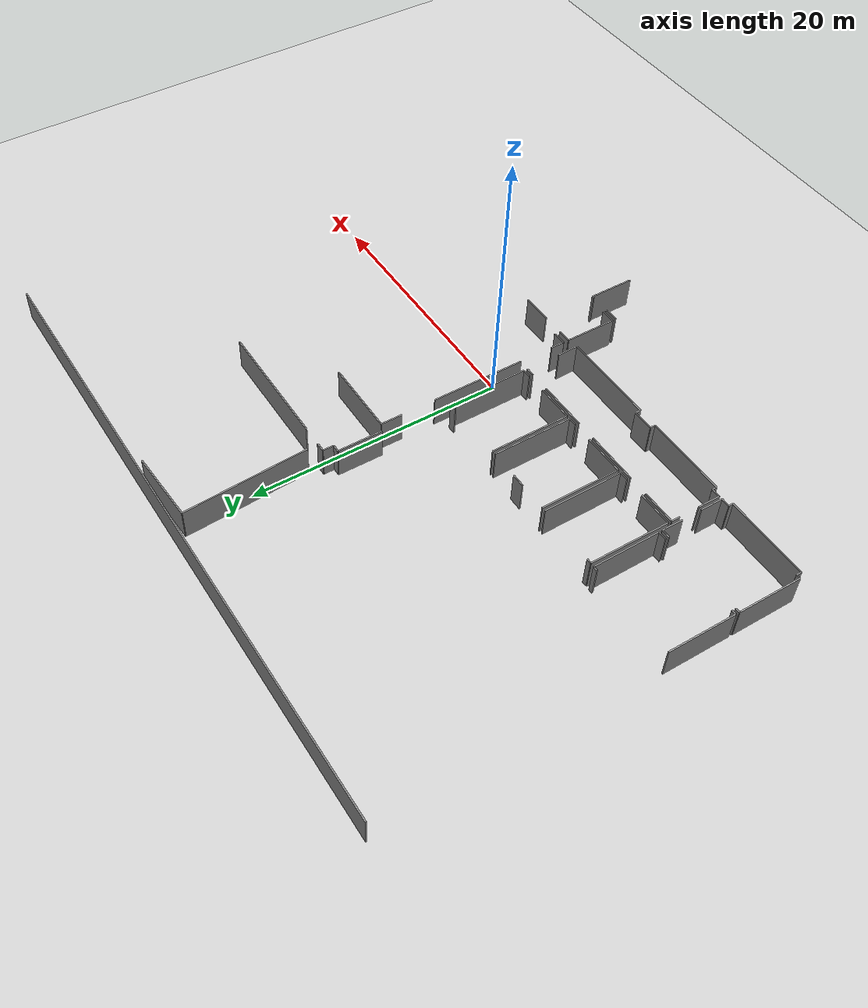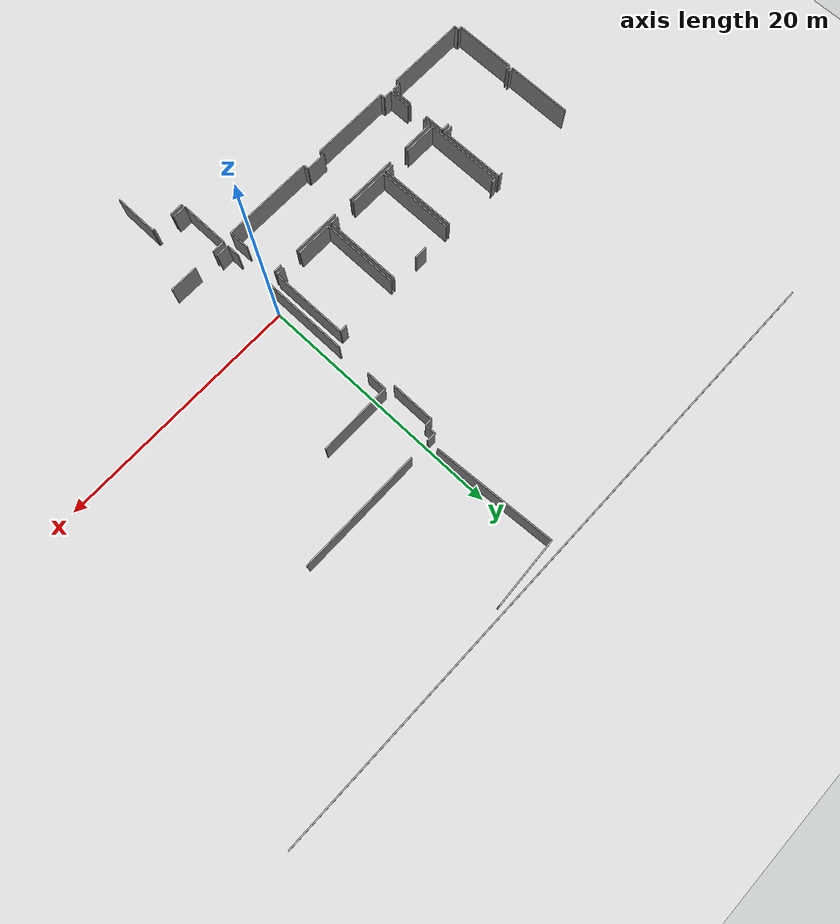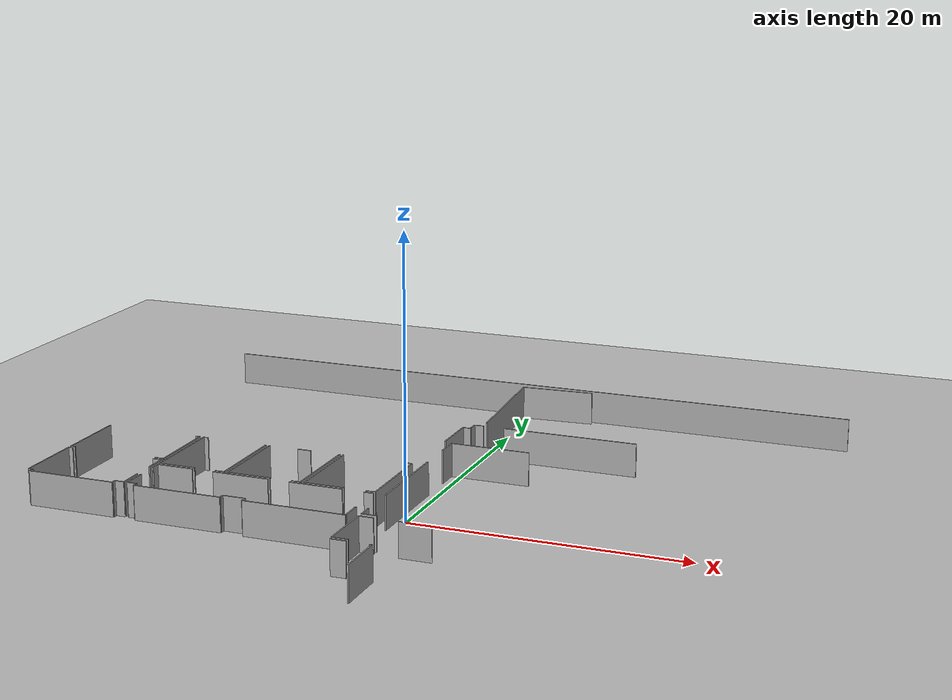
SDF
<sdf version="1.6">
 <world name="default">
  <model name="ground_plane">
   <static>1</static>
   <link name="link">
    <collision name="collision">
     <geometry><plane><normal>0 0 1</normal><size>100 100</size></plane></geometry>
     <surface><friction><ode><mu>100</mu><mu2>50</mu2></ode></friction></surface>
    </collision>
    <visual name="visual">
     <cast_shadows>0</cast_shadows>
     <geometry><plane><normal>0 0 1</normal><size>100 100</size></plane></geometry>
     <material>
      <script><uri>file://media/materials/scripts/gazebo.material</uri><name>Gazebo/Grey</name></script>
     </material>
    </visual>
   </link>
  </model>
  <model name="50025630">
   <static>1</static>
   <link name="Wall_1">
    <collision name="Wall_1_Collision">
     <geometry><box><size>9.8324522599 0.1 2.5</size></box></geometry>
     <pose>4.91622612995 0 1.25 0 0 0</pose>
    </collision>
    <visual name="Wall_1_Visual">
     <pose>4.91622612995 0 1.25 0 0 0</pose>
     <geometry><box><size>9.8324522599 0.1 2.5</size></box></geometry>
     <material>
      <script><uri>file://media/materials/scripts/gazebo.material</uri><name>Gazebo/Grey</name></script>
      <ambient>1 1 1 1</ambient>
     </material>
    </visual>
    <pose>25.6572070842 -10.6291077427 0 0 0 1.63290090576</pose>
   </link>
   <link name="Wall_2">
    <collision name="Wall_2_Collision">
     <geometry><box><size>5.55154715457 0.1 2.5</size></box></geometry>
     <pose>2.77577357729 0 1.25 0 0 0</pose>
    </collision>
    <visual name="Wall_2_Visual">
     <pose>2.77577357729 0 1.25 0 0 0</pose>
     <geometry><box><size>5.55154715457 0.1 2.5</size></box></geometry>
     <material>
      <script><uri>file://media/materials/scripts/gazebo.material</uri><name>Gazebo/Grey</name></script>
      <ambient>1 1 1 1</ambient>
     </material>
    </visual>
    <pose>25.0469592385 -0.815611168615 0 0 0 0.0597673902472</pose>
   </link>
   <link name="Wall_17">
    <collision name="Wall_17_Collision">
     <geometry><box><size>3.53105532871 0.1 2.5</size></box></geometry>
     <pose>1.76552766436 0 1.25 0 0 0</pose>
    </collision>
    <visual name="Wall_17_Visual">
     <pose>1.76552766436 0 1.25 0 0 0</pose>
     <geometry><box><size>3.53105532871 0.1 2.5</size></box></geometry>
     <material>
      <script><uri>file://media/materials/scripts/gazebo.material</uri><name>Gazebo/Grey</name></script>
      <ambient>1 1 1 1</ambient>
     </material>
    </visual>
    <pose>24.4231221067 -15.8639039352 0 0 0 1.57079632679</pose>
   </link>
   <link name="Wall_18">
    <collision name="Wall_18_Collision">
     <geometry><box><size>0.581418238854 0.1 2.5</size></box></geometry>
     <pose>0.290709119427 0 1.25 0 0 0</pose>
    </collision>
    <visual name="Wall_18_Visual">
     <pose>0.290709119427 0 1.25 0 0 0</pose>
     <geometry><box><size>0.581418238854 0.1 2.5</size></box></geometry>
     <material>
      <script><uri>file://media/materials/scripts/gazebo.material</uri><name>Gazebo/Grey</name></script>
      <ambient>1 1 1 1</ambient>
     </material>
    </visual>
    <pose>24.4231221067 -12.3328486065 0 0 0 0.0</pose>
   </link>
   <link name="Wall_19">
    <collision name="Wall_19_Collision">
     <geometry><box><size>0.856506029452 0.1 2.5</size></box></geometry>
     <pose>0.428253014726 0 1.25 0 0 0</pose>
    </collision>
    <visual name="Wall_19_Visual">
     <pose>0.428253014726 0 1.25 0 0 0</pose>
     <geometry><box><size>0.856506029452 0.1 2.5</size></box></geometry>
     <material>
      <script><uri>file://media/materials/scripts/gazebo.material</uri><name>Gazebo/Grey</name></script>
      <ambient>1 1 1 1</ambient>
     </material>
    </visual>
    <pose>25.0045403456 -12.3328486065 0 0 0 1.57079632679</pose>
   </link>
   <link name="Wall_20">
    <collision name="Wall_20_Collision">
     <geometry><box><size>0.713882027217 0.1 2.5</size></box></geometry>
     <pose>0.356941013608 0 1.25 0 0 0</pose>
    </collision>
    <visual name="Wall_20_Visual">
     <pose>0.356941013608 0 1.25 0 0 0</pose>
     <geometry><box><size>0.713882027217 0.1 2.5</size></box></geometry>
     <material>
      <script><uri>file://media/materials/scripts/gazebo.material</uri><name>Gazebo/Grey</name></script>
      <ambient>1 1 1 1</ambient>
     </material>
    </visual>
    <pose>25.0045403456 -11.476342577 0 0 0 0.0</pose>
   </link>
   <link name="Wall_21">
    <collision name="Wall_21_Collision">
     <geometry><box><size>10.0843932765 0.1 2.5</size></box></geometry>
     <pose>5.04219663824 0 1.25 0 0 0</pose>
    </collision>
    <visual name="Wall_21_Visual">
     <pose>5.04219663824 0 1.25 0 0 0</pose>
     <geometry><box><size>10.0843932765 0.1 2.5</size></box></geometry>
     <material>
      <script><uri>file://media/materials/scripts/gazebo.material</uri><name>Gazebo/Grey</name></script>
      <ambient>1 1 1 1</ambient>
     </material>
    </visual>
    <pose>27.3217041219 -11.476342577 0 0 0 0.0</pose>
   </link>
   <link name="Wall_24">
    <collision name="Wall_24_Collision">
     <geometry><box><size>1.0602183176 0.1 2.5</size></box></geometry>
     <pose>0.530109158798 0 1.25 0 0 0</pose>
    </collision>
    <visual name="Wall_24_Visual">
     <pose>0.530109158798 0 1.25 0 0 0</pose>
     <geometry><box><size>1.0602183176 0.1 2.5</size></box></geometry>
     <material>
      <script><uri>file://media/materials/scripts/gazebo.material</uri><name>Gazebo/Grey</name></script>
      <ambient>1 1 1 1</ambient>
     </material>
    </visual>
    <pose>26.0802529893 -31.8441423192 0 0 0 3.14159265359</pose>
   </link>
   <link name="Wall_25">
    <collision name="Wall_25_Collision">
     <geometry><box><size>1.07317259028 0.1 2.5</size></box></geometry>
     <pose>0.536586295142 0 1.25 0 0 0</pose>
    </collision>
    <visual name="Wall_25_Visual">
     <pose>0.536586295142 0 1.25 0 0 0</pose>
     <geometry><box><size>1.07317259028 0.1 2.5</size></box></geometry>
     <material>
      <script><uri>file://media/materials/scripts/gazebo.material</uri><name>Gazebo/Grey</name></script>
      <ambient>1 1 1 1</ambient>
     </material>
    </visual>
    <pose>25.0200346717 -31.8441423192 0 0 0 1.57079632679</pose>
   </link>
   <link name="Wall_26">
    <collision name="Wall_26_Collision">
     <geometry><box><size>7.44070562685 0.1 2.5</size></box></geometry>
     <pose>3.72035281343 0 1.25 0 0 0</pose>
    </collision>
    <visual name="Wall_26_Visual">
     <pose>3.72035281343 0 1.25 0 0 0</pose>
     <geometry><box><size>7.44070562685 0.1 2.5</size></box></geometry>
     <material>
      <script><uri>file://media/materials/scripts/gazebo.material</uri><name>Gazebo/Grey</name></script>
      <ambient>1 1 1 1</ambient>
     </material>
    </visual>
    <pose>25.0200346717 -28.034062117 0 0 0 1.57079632679</pose>
   </link>
   <link name="Wall_27">
    <collision name="Wall_27_Collision">
     <geometry><box><size>1.68469046273 0.1 2.5</size></box></geometry>
     <pose>0.842345231367 0 1.25 0 0 0</pose>
    </collision>
    <visual name="Wall_27_Visual">
     <pose>0.842345231367 0 1.25 0 0 0</pose>
     <geometry><box><size>1.68469046273 0.1 2.5</size></box></geometry>
     <material>
      <script><uri>file://media/materials/scripts/gazebo.material</uri><name>Gazebo/Grey</name></script>
      <ambient>1 1 1 1</ambient>
     </material>
    </visual>
    <pose>25.0200346717 -17.8413355601 0 0 0 1.57079632679</pose>
   </link>
   <link name="Wall_28">
    <collision name="Wall_28_Collision">
     <geometry><box><size>5.89622611556 0.1 2.5</size></box></geometry>
     <pose>2.94811305778 0 1.25 0 0 0</pose>
    </collision>
    <visual name="Wall_28_Visual">
     <pose>2.94811305778 0 1.25 0 0 0</pose>
     <geometry><box><size>5.89622611556 0.1 2.5</size></box></geometry>
     <material>
      <script><uri>file://media/materials/scripts/gazebo.material</uri><name>Gazebo/Grey</name></script>
      <ambient>1 1 1 1</ambient>
     </material>
    </visual>
    <pose>25.0200346717 -16.1566450974 0 0 0 0.0</pose>
   </link>
   <link name="Wall_70">
    <collision name="Wall_70_Collision">
     <geometry><box><size>1.14721514888 0.1 2.5</size></box></geometry>
     <pose>0.573607574439 0 1.25 0 0 0</pose>
    </collision>
    <visual name="Wall_70_Visual">
     <pose>0.573607574439 0 1.25 0 0 0</pose>
     <geometry><box><size>1.14721514888 0.1 2.5</size></box></geometry>
     <material>
      <script><uri>file://media/materials/scripts/gazebo.material</uri><name>Gazebo/Grey</name></script>
      <ambient>1 1 1 1</ambient>
     </material>
    </visual>
    <pose>26.1527715158 -36.375343701 0 0 0 3.14159265359</pose>
   </link>
   <link name="Wall_71">
    <collision name="Wall_71_Collision">
     <geometry><box><size>4.0803418912 0.1 2.5</size></box></geometry>
     <pose>2.0401709456 0 1.25 0 0 0</pose>
    </collision>
    <visual name="Wall_71_Visual">
     <pose>2.0401709456 0 1.25 0 0 0</pose>
     <geometry><box><size>4.0803418912 0.1 2.5</size></box></geometry>
     <material>
      <script><uri>file://media/materials/scripts/gazebo.material</uri><name>Gazebo/Grey</name></script>
      <ambient>1 1 1 1</ambient>
     </material>
    </visual>
    <pose>25.005556367 -36.375343701 0 0 0 1.57079632679</pose>
   </link>
   <link name="Wall_72">
    <collision name="Wall_72_Collision">
     <geometry><box><size>1.06644144859 0.1 2.5</size></box></geometry>
     <pose>0.533220724296 0 1.25 0 0 0</pose>
    </collision>
    <visual name="Wall_72_Visual">
     <pose>0.533220724296 0 1.25 0 0 0</pose>
     <geometry><box><size>1.06644144859 0.1 2.5</size></box></geometry>
     <material>
      <script><uri>file://media/materials/scripts/gazebo.material</uri><name>Gazebo/Grey</name></script>
      <ambient>1 1 1 1</ambient>
     </material>
    </visual>
    <pose>25.005556367 -32.2950018098 0 0 0 0.0</pose>
   </link>
   <link name="Wall_73">
    <collision name="Wall_73_Collision">
     <geometry><box><size>2.31919581907 0.1 2.5</size></box></geometry>
     <pose>1.15959790954 0 1.25 0 0 0</pose>
    </collision>
    <visual name="Wall_73_Visual">
     <pose>1.15959790954 0 1.25 0 0 0</pose>
     <geometry><box><size>2.31919581907 0.1 2.5</size></box></geometry>
     <material>
      <script><uri>file://media/materials/scripts/gazebo.material</uri><name>Gazebo/Grey</name></script>
      <ambient>1 1 1 1</ambient>
     </material>
    </visual>
    <pose>27.7997421846 -32.2950018098 0 0 0 0.0</pose>
   </link>
   <link name="Wall_90">
    <collision name="Wall_90_Collision">
     <geometry><box><size>1.11190840567 0.1 2.5</size></box></geometry>
     <pose>0.555954202836 0 1.25 0 0 0</pose>
    </collision>
    <visual name="Wall_90_Visual">
     <pose>0.555954202836 0 1.25 0 0 0</pose>
     <geometry><box><size>1.11190840567 0.1 2.5</size></box></geometry>
     <material>
      <script><uri>file://media/materials/scripts/gazebo.material</uri><name>Gazebo/Grey</name></script>
      <ambient>1 1 1 1</ambient>
     </material>
    </visual>
    <pose>25.0234637439 -36.6678308578 0 0 0 0.0</pose>
   </link>
   <link name="Wall_91">
    <collision name="Wall_91_Collision">
     <geometry><box><size>0.181232814951 0.1 2.5</size></box></geometry>
     <pose>0.0906164074754 0 1.25 0 0 0</pose>
    </collision>
    <visual name="Wall_91_Visual">
     <pose>0.0906164074754 0 1.25 0 0 0</pose>
     <geometry><box><size>0.181232814951 0.1 2.5</size></box></geometry>
     <material>
      <script><uri>file://media/materials/scripts/gazebo.material</uri><name>Gazebo/Grey</name></script>
      <ambient>1 1 1 1</ambient>
     </material>
    </visual>
    <pose>27.7169364415 -36.6678308578 0 0 0 0.0</pose>
   </link>
   <link name="Wall_92">
    <collision name="Wall_92_Collision">
     <geometry><box><size>3.60839995682 0.1 2.5</size></box></geometry>
     <pose>1.80419997841 0 1.25 0 0 0</pose>
    </collision>
    <visual name="Wall_92_Visual">
     <pose>1.80419997841 0 1.25 0 0 0</pose>
     <geometry><box><size>3.60839995682 0.1 2.5</size></box></geometry>
     <material>
      <script><uri>file://media/materials/scripts/gazebo.material</uri><name>Gazebo/Grey</name></script>
      <ambient>1 1 1 1</ambient>
     </material>
    </visual>
    <pose>27.8981692565 -36.6678308578 0 0 0 -1.57079632679</pose>
   </link>
   <link name="Wall_144">
    <collision name="Wall_144_Collision">
     <geometry><box><size>7.48045746363 0.1 2.5</size></box></geometry>
     <pose>3.74022873181 0 1.25 0 0 0</pose>
    </collision>
    <visual name="Wall_144_Visual">
     <pose>3.74022873181 0 1.25 0 0 0</pose>
     <geometry><box><size>7.48045746363 0.1 2.5</size></box></geometry>
     <material>
      <script><uri>file://media/materials/scripts/gazebo.material</uri><name>Gazebo/Grey</name></script>
      <ambient>1 1 1 1</ambient>
     </material>
    </visual>
    <pose>24.1679737358 -32.4316566864 0 0 0 3.14159265359</pose>
   </link>
   <link name="Wall_145">
    <collision name="Wall_145_Collision">
     <geometry><box><size>0.431809089581 0.1 2.5</size></box></geometry>
     <pose>0.215904544791 0 1.25 0 0 0</pose>
    </collision>
    <visual name="Wall_145_Visual">
     <pose>0.215904544791 0 1.25 0 0 0</pose>
     <geometry><box><size>0.431809089581 0.1 2.5</size></box></geometry>
     <material>
      <script><uri>file://media/materials/scripts/gazebo.material</uri><name>Gazebo/Grey</name></script>
      <ambient>1 1 1 1</ambient>
     </material>
    </visual>
    <pose>16.6875162722 -32.4316566864 0 0 0 1.57079632679</pose>
   </link>
   <link name="Wall_146">
    <collision name="Wall_146_Collision">
     <geometry><box><size>1.65103475428 0.1 2.5</size></box></geometry>
     <pose>0.825517377141 0 1.25 0 0 0</pose>
    </collision>
    <visual name="Wall_146_Visual">
     <pose>0.825517377141 0 1.25 0 0 0</pose>
     <geometry><box><size>1.65103475428 0.1 2.5</size></box></geometry>
     <material>
      <script><uri>file://media/materials/scripts/gazebo.material</uri><name>Gazebo/Grey</name></script>
      <ambient>1 1 1 1</ambient>
     </material>
    </visual>
    <pose>16.6875162722 -31.9998475968 0 0 0 3.14159265359</pose>
   </link>
   <link name="Wall_147">
    <collision name="Wall_147_Collision">
     <geometry><box><size>0.4064085549 0.1 2.5</size></box></geometry>
     <pose>0.20320427745 0 1.25 0 0 0</pose>
    </collision>
    <visual name="Wall_147_Visual">
     <pose>0.20320427745 0 1.25 0 0 0</pose>
     <geometry><box><size>0.4064085549 0.1 2.5</size></box></geometry>
     <material>
      <script><uri>file://media/materials/scripts/gazebo.material</uri><name>Gazebo/Grey</name></script>
      <ambient>1 1 1 1</ambient>
     </material>
    </visual>
    <pose>15.0364815179 -31.9998475968 0 0 0 -1.57079632679</pose>
   </link>
   <link name="Wall_148">
    <collision name="Wall_148_Collision">
     <geometry><box><size>6.52171428209 0.1 2.5</size></box></geometry>
     <pose>3.26085714104 0 1.25 0 0 0</pose>
    </collision>
    <visual name="Wall_148_Visual">
     <pose>3.26085714104 0 1.25 0 0 0</pose>
     <geometry><box><size>6.52171428209 0.1 2.5</size></box></geometry>
     <material>
      <script><uri>file://media/materials/scripts/gazebo.material</uri><name>Gazebo/Grey</name></script>
      <ambient>1 1 1 1</ambient>
     </material>
    </visual>
    <pose>15.0364815179 -32.4062561517 0 0 0 3.14159265359</pose>
   </link>
   <link name="Wall_149">
    <collision name="Wall_149_Collision">
     <geometry><box><size>0.361576611188 0.1 2.5</size></box></geometry>
     <pose>0.180788305594 0 1.25 0 0 0</pose>
    </collision>
    <visual name="Wall_149_Visual">
     <pose>0.180788305594 0 1.25 0 0 0</pose>
     <geometry><box><size>0.361576611188 0.1 2.5</size></box></geometry>
     <material>
      <script><uri>file://media/materials/scripts/gazebo.material</uri><name>Gazebo/Grey</name></script>
      <ambient>1 1 1 1</ambient>
     </material>
    </visual>
    <pose>8.51476723585 -32.4062561517 0 0 0 1.57079632679</pose>
   </link>
   <link name="Wall_150">
    <collision name="Wall_150_Collision">
     <geometry><box><size>0.704356826711 0.1 2.5</size></box></geometry>
     <pose>0.352178413356 0 1.25 0 0 0</pose>
    </collision>
    <visual name="Wall_150_Visual">
     <pose>0.352178413356 0 1.25 0 0 0</pose>
     <geometry><box><size>0.704356826711 0.1 2.5</size></box></geometry>
     <material>
      <script><uri>file://media/materials/scripts/gazebo.material</uri><name>Gazebo/Grey</name></script>
      <ambient>1 1 1 1</ambient>
     </material>
    </visual>
    <pose>8.51476723585 -32.0446795405 0 0 0 3.14159265359</pose>
   </link>
   <link name="Wall_151">
    <collision name="Wall_151_Collision">
     <geometry><box><size>1.78629260146 0.1 2.5</size></box></geometry>
     <pose>0.89314630073 0 1.25 0 0 0</pose>
    </collision>
    <visual name="Wall_151_Visual">
     <pose>0.89314630073 0 1.25 0 0 0</pose>
     <geometry><box><size>1.78629260146 0.1 2.5</size></box></geometry>
     <material>
      <script><uri>file://media/materials/scripts/gazebo.material</uri><name>Gazebo/Grey</name></script>
      <ambient>1 1 1 1</ambient>
     </material>
    </visual>
    <pose>7.81041040914 -32.0446795405 0 0 0 1.57079632679</pose>
   </link>
   <link name="Wall_152">
    <collision name="Wall_152_Collision">
     <geometry><box><size>0.668034062117 0.1 2.5</size></box></geometry>
     <pose>0.334017031059 0 1.25 0 0 0</pose>
    </collision>
    <visual name="Wall_152_Visual">
     <pose>0.334017031059 0 1.25 0 0 0</pose>
     <geometry><box><size>0.668034062117 0.1 2.5</size></box></geometry>
     <material>
      <script><uri>file://media/materials/scripts/gazebo.material</uri><name>Gazebo/Grey</name></script>
      <ambient>1 1 1 1</ambient>
     </material>
    </visual>
    <pose>7.81041040914 -28.6535811579 0 0 0 1.57079632679</pose>
   </link>
   <link name="Wall_153">
    <collision name="Wall_153_Collision">
     <geometry><box><size>2.7230643205 0.1 2.5</size></box></geometry>
     <pose>1.36153216025 0 1.25 0 0 0</pose>
    </collision>
    <visual name="Wall_153_Visual">
     <pose>1.36153216025 0 1.25 0 0 0</pose>
     <geometry><box><size>2.7230643205 0.1 2.5</size></box></geometry>
     <material>
      <script><uri>file://media/materials/scripts/gazebo.material</uri><name>Gazebo/Grey</name></script>
      <ambient>1 1 1 1</ambient>
     </material>
    </visual>
    <pose>7.81041040914 -27.9855470958 0 0 0 0.0</pose>
   </link>
   <link name="Wall_154">
    <collision name="Wall_154_Collision">
     <geometry><box><size>4.20035941757 0.1 2.5</size></box></geometry>
     <pose>2.10017970878 0 1.25 0 0 0</pose>
    </collision>
    <visual name="Wall_154_Visual">
     <pose>2.10017970878 0 1.25 0 0 0</pose>
     <geometry><box><size>4.20035941757 0.1 2.5</size></box></geometry>
     <material>
      <script><uri>file://media/materials/scripts/gazebo.material</uri><name>Gazebo/Grey</name></script>
      <ambient>1 1 1 1</ambient>
     </material>
    </visual>
    <pose>12.1394235349 -27.9855470958 0 0 0 0.0</pose>
   </link>
   <link name="Wall_155">
    <collision name="Wall_155_Collision">
     <geometry><box><size>3.94267099322 0.1 2.5</size></box></geometry>
     <pose>1.97133549661 0 1.25 0 0 0</pose>
    </collision>
    <visual name="Wall_155_Visual">
     <pose>1.97133549661 0 1.25 0 0 0</pose>
     <geometry><box><size>3.94267099322 0.1 2.5</size></box></geometry>
     <material>
      <script><uri>file://media/materials/scripts/gazebo.material</uri><name>Gazebo/Grey</name></script>
      <ambient>1 1 1 1</ambient>
     </material>
    </visual>
    <pose>17.9376035866 -27.9855470958 0 0 0 0.0</pose>
   </link>
   <link name="Wall_156">
    <collision name="Wall_156_Collision">
     <geometry><box><size>0.662572947161 0.1 2.5</size></box></geometry>
     <pose>0.33128647358 0 1.25 0 0 0</pose>
    </collision>
    <visual name="Wall_156_Visual">
     <pose>0.33128647358 0 1.25 0 0 0</pose>
     <geometry><box><size>0.662572947161 0.1 2.5</size></box></geometry>
     <material>
      <script><uri>file://media/materials/scripts/gazebo.material</uri><name>Gazebo/Grey</name></script>
      <ambient>1 1 1 1</ambient>
     </material>
    </visual>
    <pose>23.4719990856 -27.9855470958 0 0 0 0.0</pose>
   </link>
   <link name="Wall_157">
    <collision name="Wall_157_Collision">
     <geometry><box><size>1.66407027975 0.1 2.5</size></box></geometry>
     <pose>0.832035139874 0 1.25 0 0 0</pose>
    </collision>
    <visual name="Wall_157_Visual">
     <pose>0.832035139874 0 1.25 0 0 0</pose>
     <geometry><box><size>1.66407027975 0.1 2.5</size></box></geometry>
     <material>
      <script><uri>file://media/materials/scripts/gazebo.material</uri><name>Gazebo/Grey</name></script>
      <ambient>1 1 1 1</ambient>
     </material>
    </visual>
    <pose>24.1345720327 -30.7679216648 0 0 0 -1.55072268758</pose>
   </link>
   <link name="Wall_158">
    <collision name="Wall_158_Collision">
     <geometry><box><size>0.694069610165 0.1 2.5</size></box></geometry>
     <pose>0.347034805083 0 1.25 0 0 0</pose>
    </collision>
    <visual name="Wall_158_Visual">
     <pose>0.347034805083 0 1.25 0 0 0</pose>
     <geometry><box><size>0.694069610165 0.1 2.5</size></box></geometry>
     <material>
      <script><uri>file://media/materials/scripts/gazebo.material</uri><name>Gazebo/Grey</name></script>
      <ambient>1 1 1 1</ambient>
     </material>
    </visual>
    <pose>7.5464988538 -32.0486166234 0 0 0 3.14159265359</pose>
   </link>
   <link name="Wall_159">
    <collision name="Wall_159_Collision">
     <geometry><box><size>0.358147539006 0.1 2.5</size></box></geometry>
     <pose>0.179073769503 0 1.25 0 0 0</pose>
    </collision>
    <visual name="Wall_159_Visual">
     <pose>0.179073769503 0 1.25 0 0 0</pose>
     <geometry><box><size>0.358147539006 0.1 2.5</size></box></geometry>
     <material>
      <script><uri>file://media/materials/scripts/gazebo.material</uri><name>Gazebo/Grey</name></script>
      <ambient>1 1 1 1</ambient>
     </material>
    </visual>
    <pose>6.85242924364 -32.0486166234 0 0 0 -1.57079632679</pose>
   </link>
   <link name="Wall_160">
    <collision name="Wall_160_Collision">
     <geometry><box><size>6.54482876865 0.1 2.5</size></box></geometry>
     <pose>3.27241438432 0 1.25 0 0 0</pose>
    </collision>
    <visual name="Wall_160_Visual">
     <pose>3.27241438432 0 1.25 0 0 0</pose>
     <geometry><box><size>6.54482876865 0.1 2.5</size></box></geometry>
     <material>
      <script><uri>file://media/materials/scripts/gazebo.material</uri><name>Gazebo/Grey</name></script>
      <ambient>1 1 1 1</ambient>
     </material>
    </visual>
    <pose>6.85242924364 -32.4067641624 0 0 0 3.14159265359</pose>
   </link>
   <link name="Wall_161">
    <collision name="Wall_161_Collision">
     <geometry><box><size>0.384310089727 0.1 2.5</size></box></geometry>
     <pose>0.192155044864 0 1.25 0 0 0</pose>
    </collision>
    <visual name="Wall_161_Visual">
     <pose>0.192155044864 0 1.25 0 0 0</pose>
     <geometry><box><size>0.384310089727 0.1 2.5</size></box></geometry>
     <material>
      <script><uri>file://media/materials/scripts/gazebo.material</uri><name>Gazebo/Grey</name></script>
      <ambient>1 1 1 1</ambient>
     </material>
    </visual>
    <pose>0.30760047499 -32.4067641624 0 0 0 1.57079632679</pose>
   </link>
   <link name="Wall_162">
    <collision name="Wall_162_Collision">
     <geometry><box><size>0.30760047499 0.1 2.5</size></box></geometry>
     <pose>0.153800237495 0 1.25 0 0 0</pose>
    </collision>
    <visual name="Wall_162_Visual">
     <pose>0.153800237495 0 1.25 0 0 0</pose>
     <geometry><box><size>0.30760047499 0.1 2.5</size></box></geometry>
     <material>
      <script><uri>file://media/materials/scripts/gazebo.material</uri><name>Gazebo/Grey</name></script>
      <ambient>1 1 1 1</ambient>
     </material>
    </visual>
    <pose>0.30760047499 -32.0224540727 0 0 0 3.14159265359</pose>
   </link>
   <link name="Wall_163">
    <collision name="Wall_163_Collision">
     <geometry><box><size>5.01851063965 0.1 2.5</size></box></geometry>
     <pose>2.50925531982 0 1.25 0 0 0</pose>
    </collision>
    <visual name="Wall_163_Visual">
     <pose>2.50925531982 0 1.25 0 0 0</pose>
     <geometry><box><size>5.01851063965 0.1 2.5</size></box></geometry>
     <material>
      <script><uri>file://media/materials/scripts/gazebo.material</uri><name>Gazebo/Grey</name></script>
      <ambient>1 1 1 1</ambient>
     </material>
    </visual>
    <pose>0.0 -32.0224540727 0 0 0 1.57079632679</pose>
   </link>
   <link name="Wall_164">
    <collision name="Wall_164_Collision">
     <geometry><box><size>0.357004514945 0.1 2.5</size></box></geometry>
     <pose>0.178502257473 0 1.25 0 0 0</pose>
    </collision>
    <visual name="Wall_164_Visual">
     <pose>0.178502257473 0 1.25 0 0 0</pose>
     <geometry><box><size>0.357004514945 0.1 2.5</size></box></geometry>
     <material>
      <script><uri>file://media/materials/scripts/gazebo.material</uri><name>Gazebo/Grey</name></script>
      <ambient>1 1 1 1</ambient>
     </material>
    </visual>
    <pose>0.0 -27.003943433 0 0 0 0.0</pose>
   </link>
   <link name="Wall_165">
    <collision name="Wall_165_Collision">
     <geometry><box><size>0.675654222521 0.1 2.5</size></box></geometry>
     <pose>0.337827111261 0 1.25 0 0 0</pose>
    </collision>
    <visual name="Wall_165_Visual">
     <pose>0.337827111261 0 1.25 0 0 0</pose>
     <geometry><box><size>0.675654222521 0.1 2.5</size></box></geometry>
     <material>
      <script><uri>file://media/materials/scripts/gazebo.material</uri><name>Gazebo/Grey</name></script>
      <ambient>1 1 1 1</ambient>
     </material>
    </visual>
    <pose>6.85763635325 -27.003943433 0 0 0 0.0</pose>
   </link>
   <link name="Wall_166">
    <collision name="Wall_166_Collision">
     <geometry><box><size>1.66271900023 0.1 2.5</size></box></geometry>
     <pose>0.831359500117 0 1.25 0 0 0</pose>
    </collision>
    <visual name="Wall_166_Visual">
     <pose>0.831359500117 0 1.25 0 0 0</pose>
     <geometry><box><size>1.66271900023 0.1 2.5</size></box></geometry>
     <material>
      <script><uri>file://media/materials/scripts/gazebo.material</uri><name>Gazebo/Grey</name></script>
      <ambient>1 1 1 1</ambient>
     </material>
    </visual>
    <pose>7.53329057577 -27.003943433 0 0 0 -1.57079632679</pose>
   </link>
   <link name="Wall_167">
    <collision name="Wall_167_Collision">
     <geometry><box><size>1.78951641358 0.1 2.5</size></box></geometry>
     <pose>0.894758206791 0 1.25 0 0 0</pose>
    </collision>
    <visual name="Wall_167_Visual">
     <pose>0.894758206791 0 1.25 0 0 0</pose>
     <geometry><box><size>1.78951641358 0.1 2.5</size></box></geometry>
     <material>
      <script><uri>file://media/materials/scripts/gazebo.material</uri><name>Gazebo/Grey</name></script>
      <ambient>1 1 1 1</ambient>
     </material>
    </visual>
    <pose>7.53329057577 -30.2591489551 0 0 0 -1.56341533947</pose>
   </link>
   <link name="Wall_168">
    <collision name="Wall_168_Collision">
     <geometry><box><size>0.686576452434 0.1 2.5</size></box></geometry>
     <pose>0.343288226217 0 1.25 0 0 0</pose>
    </collision>
    <visual name="Wall_168_Visual">
     <pose>0.343288226217 0 1.25 0 0 0</pose>
     <geometry><box><size>0.686576452434 0.1 2.5</size></box></geometry>
     <material>
      <script><uri>file://media/materials/scripts/gazebo.material</uri><name>Gazebo/Grey</name></script>
      <ambient>1 1 1 1</ambient>
     </material>
    </visual>
    <pose>12.8465744204 -27.7027121421 0 0 0 3.14159265359</pose>
   </link>
   <link name="Wall_169">
    <collision name="Wall_169_Collision">
     <geometry><box><size>2.74478177766 0.1 2.5</size></box></geometry>
     <pose>1.37239088883 0 1.25 0 0 0</pose>
    </collision>
    <visual name="Wall_169_Visual">
     <pose>1.37239088883 0 1.25 0 0 0</pose>
     <geometry><box><size>2.74478177766 0.1 2.5</size></box></geometry>
     <material>
      <script><uri>file://media/materials/scripts/gazebo.material</uri><name>Gazebo/Grey</name></script>
      <ambient>1 1 1 1</ambient>
     </material>
    </visual>
    <pose>10.5625583419 -27.7027121421 0 0 0 3.14159265359</pose>
   </link>
   <link name="Wall_170">
    <collision name="Wall_170_Collision">
     <geometry><box><size>6.30885780146 0.1 2.5</size></box></geometry>
     <pose>3.15442890073 0 1.25 0 0 0</pose>
    </collision>
    <visual name="Wall_170_Visual">
     <pose>3.15442890073 0 1.25 0 0 0</pose>
     <geometry><box><size>6.30885780146 0.1 2.5</size></box></geometry>
     <material>
      <script><uri>file://media/materials/scripts/gazebo.material</uri><name>Gazebo/Grey</name></script>
      <ambient>1 1 1 1</ambient>
     </material>
    </visual>
    <pose>7.8177765642 -27.7027121421 0 0 0 1.57079632679</pose>
   </link>
   <link name="Wall_171">
    <collision name="Wall_171_Collision">
     <geometry><box><size>0.373641865161 0.1 2.5</size></box></geometry>
     <pose>0.186820932581 0 1.25 0 0 0</pose>
    </collision>
    <visual name="Wall_171_Visual">
     <pose>0.186820932581 0 1.25 0 0 0</pose>
     <geometry><box><size>0.373641865161 0.1 2.5</size></box></geometry>
     <material>
      <script><uri>file://media/materials/scripts/gazebo.material</uri><name>Gazebo/Grey</name></script>
      <ambient>1 1 1 1</ambient>
     </material>
    </visual>
    <pose>7.8177765642 -21.3938543406 0 0 0 0.0</pose>
   </link>
   <link name="Wall_172">
    <collision name="Wall_172_Collision">
     <geometry><box><size>6.3089230934 0.1 2.5</size></box></geometry>
     <pose>3.1544615467 0 1.25 0 0 0</pose>
    </collision>
    <visual name="Wall_172_Visual">
     <pose>3.1544615467 0 1.25 0 0 0</pose>
     <geometry><box><size>6.3089230934 0.1 2.5</size></box></geometry>
     <material>
      <script><uri>file://media/materials/scripts/gazebo.material</uri><name>Gazebo/Grey</name></script>
      <ambient>1 1 1 1</ambient>
     </material>
    </visual>
    <pose>12.8178718162 -21.3938543406 0 0 0 -1.56624678597</pose>
   </link>
   <link name="Wall_173">
    <collision name="Wall_173_Collision">
     <geometry><box><size>0.665875016669 0.1 2.5</size></box></geometry>
     <pose>0.332937508335 0 1.25 0 0 0</pose>
    </collision>
    <visual name="Wall_173_Visual">
     <pose>0.332937508335 0 1.25 0 0 0</pose>
     <geometry><box><size>0.665875016669 0.1 2.5</size></box></geometry>
     <material>
      <script><uri>file://media/materials/scripts/gazebo.material</uri><name>Gazebo/Grey</name></script>
      <ambient>1 1 1 1</ambient>
     </material>
    </visual>
    <pose>18.6278631165 -27.6980130432 0 0 0 3.14159265359</pose>
   </link>
   <link name="Wall_174">
    <collision name="Wall_174_Collision">
     <geometry><box><size>3.23628212374 0.1 2.5</size></box></geometry>
     <pose>1.61814106187 0 1.25 0 0 0</pose>
    </collision>
    <visual name="Wall_174_Visual">
     <pose>1.61814106187 0 1.25 0 0 0</pose>
     <geometry><box><size>3.23628212374 0.1 2.5</size></box></geometry>
     <material>
      <script><uri>file://media/materials/scripts/gazebo.material</uri><name>Gazebo/Grey</name></script>
      <ambient>1 1 1 1</ambient>
     </material>
    </visual>
    <pose>16.3560392946 -27.6980130432 0 0 0 3.14159265359</pose>
   </link>
   <link name="Wall_175">
    <collision name="Wall_175_Collision">
     <geometry><box><size>6.31304888968 0.1 2.5</size></box></geometry>
     <pose>3.15652444484 0 1.25 0 0 0</pose>
    </collision>
    <visual name="Wall_175_Visual">
     <pose>3.15652444484 0 1.25 0 0 0</pose>
     <geometry><box><size>6.31304888968 0.1 2.5</size></box></geometry>
     <material>
      <script><uri>file://media/materials/scripts/gazebo.material</uri><name>Gazebo/Grey</name></script>
      <ambient>1 1 1 1</ambient>
     </material>
    </visual>
    <pose>13.1197571709 -27.6980130432 0 0 0 1.57079632679</pose>
   </link>
   <link name="Wall_176">
    <collision name="Wall_176_Collision">
     <geometry><box><size>1.03545279628 0.1 2.5</size></box></geometry>
     <pose>0.517726398141 0 1.25 0 0 0</pose>
    </collision>
    <visual name="Wall_176_Visual">
     <pose>0.517726398141 0 1.25 0 0 0</pose>
     <geometry><box><size>1.03545279628 0.1 2.5</size></box></geometry>
     <material>
      <script><uri>file://media/materials/scripts/gazebo.material</uri><name>Gazebo/Grey</name></script>
      <ambient>1 1 1 1</ambient>
     </material>
    </visual>
    <pose>15.3543692095 -21.3849641535 0 0 0 0.0</pose>
   </link>
   <link name="Wall_177">
    <collision name="Wall_177_Collision">
     <geometry><box><size>6.31305445441 0.1 2.5</size></box></geometry>
     <pose>3.15652722721 0 1.25 0 0 0</pose>
    </collision>
    <visual name="Wall_177_Visual">
     <pose>3.15652722721 0 1.25 0 0 0</pose>
     <geometry><box><size>6.31305445441 0.1 2.5</size></box></geometry>
     <material>
      <script><uri>file://media/materials/scripts/gazebo.material</uri><name>Gazebo/Grey</name></script>
      <ambient>1 1 1 1</ambient>
     </material>
    </visual>
    <pose>18.6194809401 -21.3849641535 0 0 0 -1.56946857349</pose>
   </link>
   <link name="Wall_178">
    <collision name="Wall_178_Collision">
     <geometry><box><size>0.681242340151 0.1 2.5</size></box></geometry>
     <pose>0.340621170076 0 1.25 0 0 0</pose>
    </collision>
    <visual name="Wall_178_Visual">
     <pose>0.340621170076 0 1.25 0 0 0</pose>
     <geometry><box><size>0.681242340151 0.1 2.5</size></box></geometry>
     <material>
      <script><uri>file://media/materials/scripts/gazebo.material</uri><name>Gazebo/Grey</name></script>
      <ambient>1 1 1 1</ambient>
     </material>
    </visual>
    <pose>24.1559084819 -27.6950919817 0 0 0 3.14159265359</pose>
   </link>
   <link name="Wall_179">
    <collision name="Wall_179_Collision">
     <geometry><box><size>2.95535221016 0.1 2.5</size></box></geometry>
     <pose>1.47767610508 0 1.25 0 0 0</pose>
    </collision>
    <visual name="Wall_179_Visual">
     <pose>1.47767610508 0 1.25 0 0 0</pose>
     <geometry><box><size>2.95535221016 0.1 2.5</size></box></geometry>
     <material>
      <script><uri>file://media/materials/scripts/gazebo.material</uri><name>Gazebo/Grey</name></script>
      <ambient>1 1 1 1</ambient>
     </material>
    </visual>
    <pose>21.8758294862 -27.6950919817 0 0 0 3.14159265359</pose>
   </link>
   <link name="Wall_180">
    <collision name="Wall_180_Collision">
     <geometry><box><size>6.32028804206 0.1 2.5</size></box></geometry>
     <pose>3.16014402103 0 1.25 0 0 0</pose>
    </collision>
    <visual name="Wall_180_Visual">
     <pose>3.16014402103 0 1.25 0 0 0</pose>
     <geometry><box><size>6.32028804206 0.1 2.5</size></box></geometry>
     <material>
      <script><uri>file://media/materials/scripts/gazebo.material</uri><name>Gazebo/Grey</name></script>
      <ambient>1 1 1 1</ambient>
     </material>
    </visual>
    <pose>18.920477276 -27.6950919817 0 0 0 1.57079632679</pose>
   </link>
   <link name="Wall_181">
    <collision name="Wall_181_Collision">
     <geometry><box><size>0.587260361831 0.1 2.5</size></box></geometry>
     <pose>0.293630180915 0 1.25 0 0 0</pose>
    </collision>
    <visual name="Wall_181_Visual">
     <pose>0.293630180915 0 1.25 0 0 0</pose>
     <geometry><box><size>0.587260361831 0.1 2.5</size></box></geometry>
     <material>
      <script><uri>file://media/materials/scripts/gazebo.material</uri><name>Gazebo/Grey</name></script>
      <ambient>1 1 1 1</ambient>
     </material>
    </visual>
    <pose>23.5414695479 -21.3748039396 0 0 0 0.0</pose>
   </link>
   <link name="Wall_182">
    <collision name="Wall_182_Collision">
     <geometry><box><size>6.32034647859 0.1 2.5</size></box></geometry>
     <pose>3.1601732393 0 1.25 0 0 0</pose>
    </collision>
    <visual name="Wall_182_Visual">
     <pose>3.1601732393 0 1.25 0 0 0</pose>
     <geometry><box><size>6.32034647859 0.1 2.5</size></box></geometry>
     <material>
      <script><uri>file://media/materials/scripts/gazebo.material</uri><name>Gazebo/Grey</name></script>
      <ambient>1 1 1 1</ambient>
     </material>
    </visual>
    <pose>24.1287299098 -21.3748039396 0 0 0 -1.56649614231</pose>
   </link>
   <link name="Wall_183">
    <collision name="Wall_183_Collision">
     <geometry><box><size>0.676416238562 0.1 2.5</size></box></geometry>
     <pose>0.338208119281 0 1.25 0 0 0</pose>
    </collision>
    <visual name="Wall_183_Visual">
     <pose>0.338208119281 0 1.25 0 0 0</pose>
     <geometry><box><size>0.676416238562 0.1 2.5</size></box></geometry>
     <material>
      <script><uri>file://media/materials/scripts/gazebo.material</uri><name>Gazebo/Grey</name></script>
      <ambient>1 1 1 1</ambient>
     </material>
    </visual>
    <pose>7.53811667736 -26.7209814767 0 0 0 3.14159265359</pose>
   </link>
   <link name="Wall_184">
    <collision name="Wall_184_Collision">
     <geometry><box><size>0.355353480191 0.1 2.5</size></box></geometry>
     <pose>0.177676740095 0 1.25 0 0 0</pose>
    </collision>
    <visual name="Wall_184_Visual">
     <pose>0.177676740095 0 1.25 0 0 0</pose>
     <geometry><box><size>0.355353480191 0.1 2.5</size></box></geometry>
     <material>
      <script><uri>file://media/materials/scripts/gazebo.material</uri><name>Gazebo/Grey</name></script>
      <ambient>1 1 1 1</ambient>
     </material>
    </visual>
    <pose>0.366656718124 -26.7209814767 0 0 0 3.14159265359</pose>
   </link>
   <link name="Wall_185">
    <collision name="Wall_185_Collision">
     <geometry><box><size>5.33944639535 0.1 2.5</size></box></geometry>
     <pose>2.66972319767 0 1.25 0 0 0</pose>
    </collision>
    <visual name="Wall_185_Visual">
     <pose>2.66972319767 0 1.25 0 0 0</pose>
     <geometry><box><size>5.33944639535 0.1 2.5</size></box></geometry>
     <material>
      <script><uri>file://media/materials/scripts/gazebo.material</uri><name>Gazebo/Grey</name></script>
      <ambient>1 1 1 1</ambient>
     </material>
    </visual>
    <pose>0.0113032379331 -26.7209814767 0 0 0 1.57079632679</pose>
   </link>
   <link name="Wall_186">
    <collision name="Wall_186_Collision">
     <geometry><box><size>0.351416397315 0.1 2.5</size></box></geometry>
     <pose>0.175708198658 0 1.25 0 0 0</pose>
    </collision>
    <visual name="Wall_186_Visual">
     <pose>0.175708198658 0 1.25 0 0 0</pose>
     <geometry><box><size>0.351416397315 0.1 2.5</size></box></geometry>
     <material>
      <script><uri>file://media/materials/scripts/gazebo.material</uri><name>Gazebo/Grey</name></script>
      <ambient>1 1 1 1</ambient>
     </material>
    </visual>
    <pose>7.14339236841 -21.3815350813 0 0 0 0.0</pose>
   </link>
   <link name="Wall_187">
    <collision name="Wall_187_Collision">
     <geometry><box><size>5.33962202632 0.1 2.5</size></box></geometry>
     <pose>2.66981101316 0 1.25 0 0 0</pose>
    </collision>
    <visual name="Wall_187_Visual">
     <pose>2.66981101316 0 1.25 0 0 0</pose>
     <geometry><box><size>5.33962202632 0.1 2.5</size></box></geometry>
     <material>
      <script><uri>file://media/materials/scripts/gazebo.material</uri><name>Gazebo/Grey</name></script>
      <ambient>1 1 1 1</ambient>
     </material>
    </visual>
    <pose>7.49480876572 -21.3815350813 0 0 0 -1.56268556797</pose>
   </link>
   <link name="Wall_191">
    <collision name="Wall_191_Collision">
     <geometry><box><size>50.476577532 0.1 2.5</size></box></geometry>
     <pose>25.238288766 0 1.25 0 0 0</pose>
    </collision>
    <visual name="Wall_191_Visual">
     <pose>25.238288766 0 1.25 0 0 0</pose>
     <geometry><box><size>50.476577532 0.1 2.5</size></box></geometry>
     <material>
      <script><uri>file://media/materials/scripts/gazebo.material</uri><name>Gazebo/Grey</name></script>
      <ambient>1 1 1 1</ambient>
     </material>
    </visual>
   </link>
   <pose>-25.75 26.2274655982 0 0 0 0</pose>
  </model>
 </world>
</sdf>
